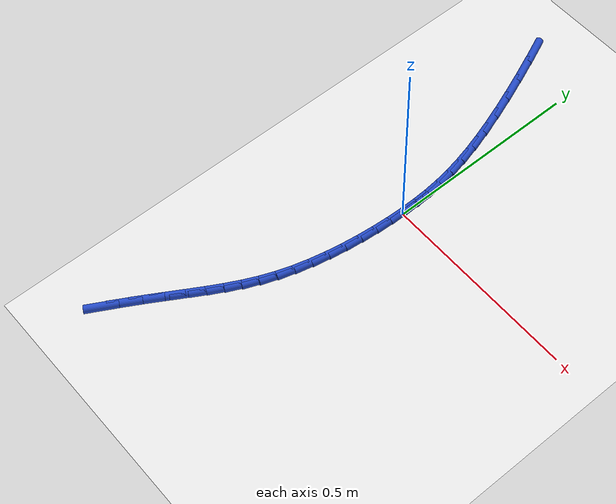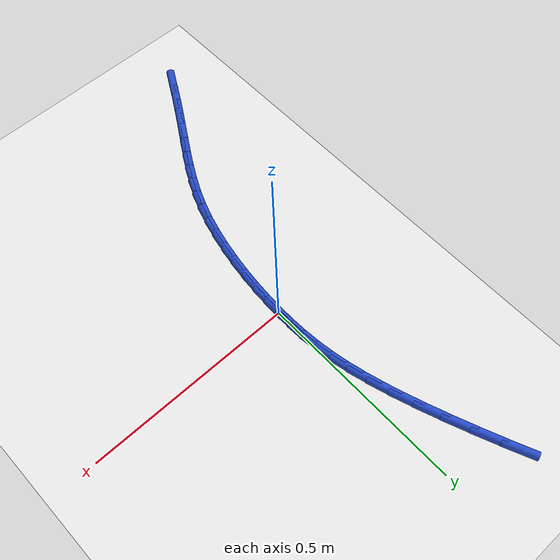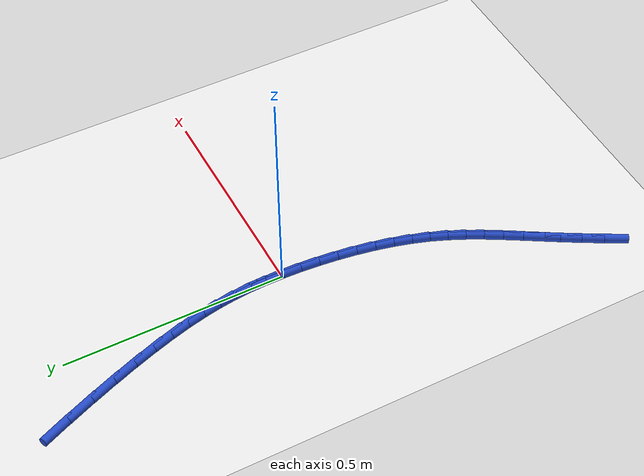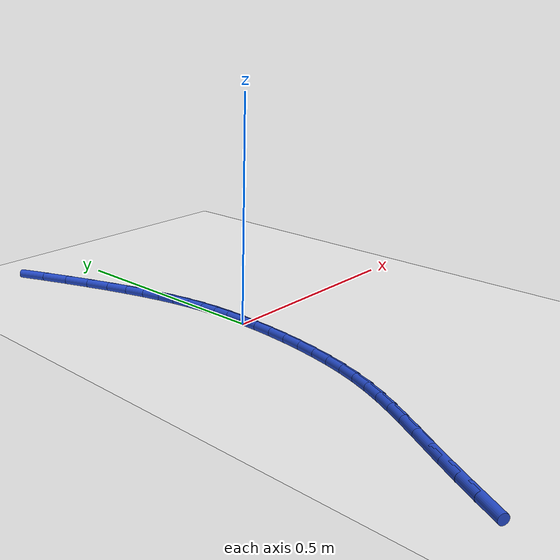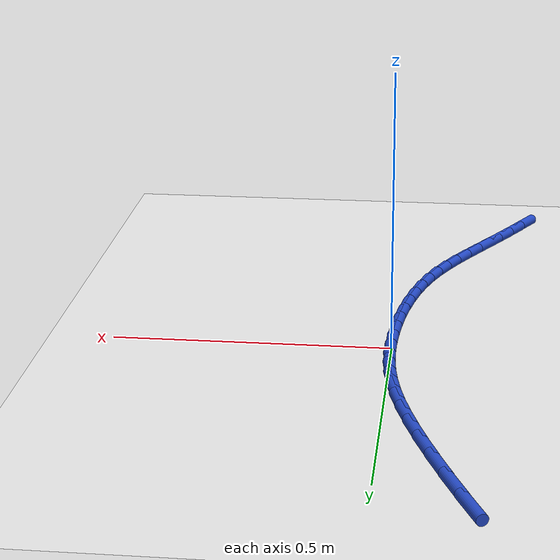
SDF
<sdf version="1.6">
 <world name="default">
  <model name="ground_plane">
   <static>1</static>
   <link name="link">
    <collision name="collision">
     <geometry><plane><normal>0 0 1</normal><size>100 100</size></plane></geometry>
     <surface><friction><ode><mu>100</mu><mu2>50</mu2></ode></friction></surface>
    </collision>
    <visual name="visual">
     <cast_shadows>0</cast_shadows>
     <geometry><plane><normal>0 0 1</normal><size>100 100</size></plane></geometry>
     <material>
      <script><uri>file://media/materials/scripts/gazebo.material</uri><name>Gazebo/WhiteGlow</name></script>
     </material>
    </visual>
   </link>
  </model>
  <model name="line">
   <link name="link_0">
    <pose>-1.6479873021779667e-17 -6.938893903907228e-18 0.01 0 1.57 1.569500231005203</pose>
    <collision name="collision">
     <geometry><cylinder><radius>0.01</radius><length>0.08</length></cylinder></geometry>
    </collision>
    <visual name="visual">
     <material>
      <script><name>Gazebo/Blue</name><uri>file://media/materials/scripts/gazebo.material</uri></script>
     </material>
     <geometry><cylinder><radius>0.01</radius><length>0.08</length></cylinder></geometry>
    </visual>
   </link>
   <link name="link_1">
    <pose>5.077393028622789e-05 0.03917449794906124 0.01 0 1.57 -1.5302840170829337</pose>
    <collision name="collision">
     <geometry><cylinder><radius>0.01</radius><length>0.08</length></cylinder></geometry>
    </collision>
    <visual name="visual">
     <material>
      <script><name>Gazebo/Blue</name><uri>file://media/materials/scripts/gazebo.material</uri></script>
     </material>
     <geometry><cylinder><radius>0.01</radius><length>0.08</length></cylinder></geometry>
    </visual>
   </link>
   <link name="link_2">
    <pose>-0.0015017442545159371 0.07747566486578265 0.01 0 1.57 -1.4826052268935421</pose>
    <collision name="collision">
     <geometry><cylinder><radius>0.01</radius><length>0.08</length></cylinder></geometry>
    </collision>
    <visual name="visual">
     <material>
      <script><name>Gazebo/Blue</name><uri>file://media/materials/scripts/gazebo.material</uri></script>
     </material>
     <geometry><cylinder><radius>0.01</radius><length>0.08</length></cylinder></geometry>
    </visual>
   </link>
   <link name="link_3">
    <pose>-0.004880900797516404 0.11569257502980297 0.01 0 1.57 -1.4322018929818372</pose>
    <collision name="collision">
     <geometry><cylinder><radius>0.01</radius><length>0.08</length></cylinder></geometry>
    </collision>
    <visual name="visual">
     <material>
      <script><name>Gazebo/Blue</name><uri>file://media/materials/scripts/gazebo.material</uri></script>
     </material>
     <geometry><cylinder><radius>0.01</radius><length>0.08</length></cylinder></geometry>
    </visual>
   </link>
   <link name="link_4">
    <pose>-0.010310041941825065 0.15461430272076068 0.01 0 1.57 -1.3824731388075697</pose>
    <collision name="collision">
     <geometry><cylinder><radius>0.01</radius><length>0.08</length></cylinder></geometry>
    </collision>
    <visual name="visual">
     <material>
      <script><name>Gazebo/Blue</name><uri>file://media/materials/scripts/gazebo.material</uri></script>
     </material>
     <geometry><cylinder><radius>0.01</radius><length>0.08</length></cylinder></geometry>
    </visual>
   </link>
   <link name="link_5">
    <pose>-0.018012513930551817 0.19502992221829465 0.01 0 1.57 -1.3363258828078854</pose>
    <collision name="collision">
     <geometry><cylinder><radius>0.01</radius><length>0.08</length></cylinder></geometry>
    </collision>
    <visual name="visual">
     <material>
      <script><name>Gazebo/Blue</name><uri>file://media/materials/scripts/gazebo.material</uri></script>
     </material>
     <geometry><cylinder><radius>0.01</radius><length>0.08</length></cylinder></geometry>
    </visual>
   </link>
   <link name="link_6">
    <pose>-0.028211663006806567 0.23772850780204338 0.01 0 1.57 -1.2956940584284902</pose>
    <collision name="collision">
     <geometry><cylinder><radius>0.01</radius><length>0.08</length></cylinder></geometry>
    </collision>
    <visual name="visual">
     <material>
      <script><name>Gazebo/Blue</name><uri>file://media/materials/scripts/gazebo.material</uri></script>
     </material>
     <geometry><cylinder><radius>0.01</radius><length>0.08</length></cylinder></geometry>
    </visual>
   </link>
   <link name="link_7">
    <pose>-0.04113083541369918 0.28349913375164554 0.01 0 1.57 -1.261453082566509</pose>
    <collision name="collision">
     <geometry><cylinder><radius>0.01</radius><length>0.08</length></cylinder></geometry>
    </collision>
    <visual name="visual">
     <material>
      <script><name>Gazebo/Blue</name><uri>file://media/materials/scripts/gazebo.material</uri></script>
     </material>
     <geometry><cylinder><radius>0.01</radius><length>0.08</length></cylinder></geometry>
    </visual>
   </link>
   <link name="link_8">
    <pose>-0.05699292592493679 0.33312966006304634 0.01 0 1.57 -1.2337720188115582</pose>
    <collision name="collision">
     <geometry><cylinder><radius>0.01</radius><length>0.08</length></cylinder></geometry>
    </collision>
    <visual name="visual">
     <material>
      <script><name>Gazebo/Blue</name><uri>file://media/materials/scripts/gazebo.material</uri></script>
     </material>
     <geometry><cylinder><radius>0.01</radius><length>0.08</length></cylinder></geometry>
    </visual>
   </link>
   <link name="link_9">
    <pose>-0.07586091777697185 0.3869778445571844 0.01 0 1.57 -1.2115453925271331</pose>
    <collision name="collision">
     <geometry><cylinder><radius>0.01</radius><length>0.08</length></cylinder></geometry>
    </collision>
    <visual name="visual">
     <material>
      <script><name>Gazebo/Blue</name><uri>file://media/materials/scripts/gazebo.material</uri></script>
     </material>
     <geometry><cylinder><radius>0.01</radius><length>0.08</length></cylinder></geometry>
    </visual>
   </link>
   <link name="link_10">
    <pose>-0.09740268046121128 0.44433873698504645 0.01 0 1.57 -1.192871446888913</pose>
    <collision name="collision">
     <geometry><cylinder><radius>0.01</radius><length>0.08</length></cylinder></geometry>
    </collision>
    <visual name="visual">
     <material>
      <script><name>Gazebo/Blue</name><uri>file://media/materials/scripts/gazebo.material</uri></script>
     </material>
     <geometry><cylinder><radius>0.01</radius><length>0.08</length></cylinder></geometry>
    </visual>
   </link>
   <link name="link_11">
    <pose>-0.12122612771864923 0.5043461285724404 0.01 0 1.57 -1.1764441212760706</pose>
    <collision name="collision">
     <geometry><cylinder><radius>0.01</radius><length>0.08</length></cylinder></geometry>
    </collision>
    <visual name="visual">
     <material>
      <script><name>Gazebo/Blue</name><uri>file://media/materials/scripts/gazebo.material</uri></script>
     </material>
     <geometry><cylinder><radius>0.01</radius><length>0.08</length></cylinder></geometry>
    </visual>
   </link>
   <link name="link_12">
    <pose>-0.14693917329027975 0.5661338105451743 0.01 0 1.57 -1.1613543080468063</pose>
    <collision name="collision">
     <geometry><cylinder><radius>0.01</radius><length>0.08</length></cylinder></geometry>
    </collision>
    <visual name="visual">
     <material>
      <script><name>Gazebo/Blue</name><uri>file://media/materials/scripts/gazebo.material</uri></script>
     </material>
     <geometry><cylinder><radius>0.01</radius><length>0.08</length></cylinder></geometry>
    </visual>
   </link>
   <link name="link_173">
    <pose>-0.24456924473114494 -0.6740970694891495 0.01 0 1.57 1.0603250176430916</pose>
    <collision name="collision">
     <geometry><cylinder><radius>0.01</radius><length>0.08</length></cylinder></geometry>
    </collision>
    <visual name="visual">
     <material>
      <script><name>Gazebo/Blue</name><uri>file://media/materials/scripts/gazebo.material</uri></script>
     </material>
     <geometry><cylinder><radius>0.01</radius><length>0.08</length></cylinder></geometry>
    </visual>
   </link>
   <link name="link_174">
    <pose>-0.21904304200697355 -0.6285127455043588 0.01 0 1.57 1.0452102092913909</pose>
    <collision name="collision">
     <geometry><cylinder><radius>0.01</radius><length>0.08</length></cylinder></geometry>
    </collision>
    <visual name="visual">
     <material>
      <script><name>Gazebo/Blue</name><uri>file://media/materials/scripts/gazebo.material</uri></script>
     </material>
     <geometry><cylinder><radius>0.01</radius><length>0.08</length></cylinder></geometry>
    </visual>
   </link>
   <link name="link_175">
    <pose>-0.19437709993507324 -0.5859854868947577 0.01 0 1.57 1.0315610345156045</pose>
    <collision name="collision">
     <geometry><cylinder><radius>0.01</radius><length>0.08</length></cylinder></geometry>
    </collision>
    <visual name="visual">
     <material>
      <script><name>Gazebo/Blue</name><uri>file://media/materials/scripts/gazebo.material</uri></script>
     </material>
     <geometry><cylinder><radius>0.01</radius><length>0.08</length></cylinder></geometry>
    </visual>
   </link>
   <link name="link_176">
    <pose>-0.17068234370031732 -0.5463880141948203 0.01 0 1.57 1.0270524997572699</pose>
    <collision name="collision">
     <geometry><cylinder><radius>0.01</radius><length>0.08</length></cylinder></geometry>
    </collision>
    <visual name="visual">
     <material>
      <script><name>Gazebo/Blue</name><uri>file://media/materials/scripts/gazebo.material</uri></script>
     </material>
     <geometry><cylinder><radius>0.01</radius><length>0.08</length></cylinder></geometry>
    </visual>
   </link>
   <link name="link_177">
    <pose>-0.14809350697153048 -0.5090220743506713 0.01 0 1.57 1.03360960681523</pose>
    <collision name="collision">
     <geometry><cylinder><radius>0.01</radius><length>0.08</length></cylinder></geometry>
    </collision>
    <visual name="visual">
     <material>
      <script><name>Gazebo/Blue</name><uri>file://media/materials/scripts/gazebo.material</uri></script>
     </material>
     <geometry><cylinder><radius>0.01</radius><length>0.08</length></cylinder></geometry>
    </visual>
   </link>
   <link name="link_178">
    <pose>-0.1267457044902934 -0.47318027544518315 0.01 0 1.57 1.0525688835739293</pose>
    <collision name="collision">
     <geometry><cylinder><radius>0.01</radius><length>0.08</length></cylinder></geometry>
    </collision>
    <visual name="visual">
     <material>
      <script><name>Gazebo/Blue</name><uri>file://media/materials/scripts/gazebo.material</uri></script>
     </material>
     <geometry><cylinder><radius>0.01</radius><length>0.08</length></cylinder></geometry>
    </visual>
   </link>
   <link name="link_179">
    <pose>-0.10677405099818743 -0.43815522556123004 0.01 0 1.57 1.0844428412229161</pose>
    <collision name="collision">
     <geometry><cylinder><radius>0.01</radius><length>0.08</length></cylinder></geometry>
    </collision>
    <visual name="visual">
     <material>
      <script><name>Gazebo/Blue</name><uri>file://media/materials/scripts/gazebo.material</uri></script>
     </material>
     <geometry><cylinder><radius>0.01</radius><length>0.08</length></cylinder></geometry>
    </visual>
   </link>
   <link name="link_180">
    <pose>-0.08831366123679256 -0.4032395327816834 0.01 0 1.57 1.1286125605735167</pose>
    <collision name="collision">
     <geometry><cylinder><radius>0.01</radius><length>0.08</length></cylinder></geometry>
    </collision>
    <visual name="visual">
     <material>
      <script><name>Gazebo/Blue</name><uri>file://media/materials/scripts/gazebo.material</uri></script>
     </material>
     <geometry><cylinder><radius>0.01</radius><length>0.08</length></cylinder></geometry>
    </visual>
   </link>
   <link name="link_181">
    <pose>-0.07149964994769006 -0.367725805189417 0.01 0 1.57 1.1831726063671468</pose>
    <collision name="collision">
     <geometry><cylinder><radius>0.01</radius><length>0.08</length></cylinder></geometry>
    </collision>
    <visual name="visual">
     <material>
      <script><name>Gazebo/Blue</name><uri>file://media/materials/scripts/gazebo.material</uri></script>
     </material>
     <geometry><cylinder><radius>0.01</radius><length>0.08</length></cylinder></geometry>
    </visual>
   </link>
   <link name="link_182">
    <pose>-0.05646713187246078 -0.3309066508673038 0.01 0 1.57 1.2436922149349345</pose>
    <collision name="collision">
     <geometry><cylinder><radius>0.01</radius><length>0.08</length></cylinder></geometry>
    </collision>
    <visual name="visual">
     <material>
      <script><name>Gazebo/Blue</name><uri>file://media/materials/scripts/gazebo.material</uri></script>
     </material>
     <geometry><cylinder><radius>0.01</radius><length>0.08</length></cylinder></geometry>
    </visual>
   </link>
   <link name="link_183">
    <pose>-0.04333111160509885 -0.29219072491981607 0.01 0 1.57 1.2993006208613116</pose>
    <collision name="collision">
     <geometry><cylinder><radius>0.01</radius><length>0.08</length></cylinder></geometry>
    </collision>
    <visual name="visual">
     <material>
      <script><name>Gazebo/Blue</name><uri>file://media/materials/scripts/gazebo.material</uri></script>
     </material>
     <geometry><cylinder><radius>0.01</radius><length>0.08</length></cylinder></geometry>
    </visual>
   </link>
   <link name="link_184">
    <pose>-0.03207406607258253 -0.2517514426785878 0.01 0 1.57 1.347854322442785</pose>
    <collision name="collision">
     <geometry><cylinder><radius>0.01</radius><length>0.08</length></cylinder></geometry>
    </collision>
    <visual name="visual">
     <material>
      <script><name>Gazebo/Blue</name><uri>file://media/materials/scripts/gazebo.material</uri></script>
     </material>
     <geometry><cylinder><radius>0.01</radius><length>0.08</length></cylinder></geometry>
    </visual>
   </link>
   <link name="link_185">
    <pose>-0.022624835234745826 -0.21007173536805662 0.01 0 1.57 1.3910105358086233</pose>
    <collision name="collision">
     <geometry><cylinder><radius>0.01</radius><length>0.08</length></cylinder></geometry>
    </collision>
    <visual name="visual">
     <material>
      <script><name>Gazebo/Blue</name><uri>file://media/materials/scripts/gazebo.material</uri></script>
     </material>
     <geometry><cylinder><radius>0.01</radius><length>0.08</length></cylinder></geometry>
    </visual>
   </link>
   <link name="link_186">
    <pose>-0.014912107621138685 -0.1676354080517704 0.01 0 1.57 1.4301332945458287</pose>
    <collision name="collision">
     <geometry><cylinder><radius>0.01</radius><length>0.08</length></cylinder></geometry>
    </collision>
    <visual name="visual">
     <material>
      <script><name>Gazebo/Blue</name><uri>file://media/materials/scripts/gazebo.material</uri></script>
     </material>
     <geometry><cylinder><radius>0.01</radius><length>0.08</length></cylinder></geometry>
    </visual>
   </link>
   <link name="link_187">
    <pose>-0.0088645717613106 -0.12492626579327419 0.01 0 1.57 1.4663810013989438</pose>
    <collision name="collision">
     <geometry><cylinder><radius>0.01</radius><length>0.08</length></cylinder></geometry>
    </collision>
    <visual name="visual">
     <material>
      <script><name>Gazebo/Blue</name><uri>file://media/materials/scripts/gazebo.material</uri></script>
     </material>
     <geometry><cylinder><radius>0.01</radius><length>0.08</length></cylinder></geometry>
    </visual>
   </link>
   <link name="link_188">
    <pose>-0.00441091618481158 -0.08242811365611574 0.01 0 1.57 1.5007948301265086</pose>
    <collision name="collision">
     <geometry><cylinder><radius>0.01</radius><length>0.08</length></cylinder></geometry>
    </collision>
    <visual name="visual">
     <material>
      <script><name>Gazebo/Blue</name><uri>file://media/materials/scripts/gazebo.material</uri></script>
     </material>
     <geometry><cylinder><radius>0.01</radius><length>0.08</length></cylinder></geometry>
    </visual>
   </link>
   <link name="link_189">
    <pose>-0.0014798294211914396 -0.04062475670384197 0.01 0 1.57 1.5343856371593687</pose>
    <collision name="collision">
     <geometry><cylinder><radius>0.01</radius><length>0.08</length></cylinder></geometry>
    </collision>
    <visual name="visual">
     <material>
      <script><name>Gazebo/Blue</name><uri>file://media/materials/scripts/gazebo.material</uri></script>
     </material>
     <geometry><cylinder><radius>0.01</radius><length>0.08</length></cylinder></geometry>
    </visual>
   </link>
   <link name="link_190">
    <pose>0.0 2.3592239273284576e-16 0.01 0 1.57 1.5682327410041519</pose>
    <collision name="collision">
     <geometry><cylinder><radius>0.01</radius><length>0.08</length></cylinder></geometry>
    </collision>
    <visual name="visual">
     <material>
      <script><name>Gazebo/Blue</name><uri>file://media/materials/scripts/gazebo.material</uri></script>
     </material>
     <geometry><cylinder><radius>0.01</radius><length>0.08</length></cylinder></geometry>
    </visual>
   </link>
   <link name="link_191">
    <pose>9.988354921291326e-05 0.03896235139186402 0.01 0 1.57 1.5682327410041514</pose>
    <collision name="collision">
     <geometry><cylinder><radius>0.01</radius><length>0.08</length></cylinder></geometry>
    </collision>
    <visual name="visual">
     <material>
      <script><name>Gazebo/Blue</name><uri>file://media/materials/scripts/gazebo.material</uri></script>
     </material>
     <geometry><cylinder><radius>0.01</radius><length>0.08</length></cylinder></geometry>
    </visual>
   </link>
  </model>
 </world>
</sdf>
